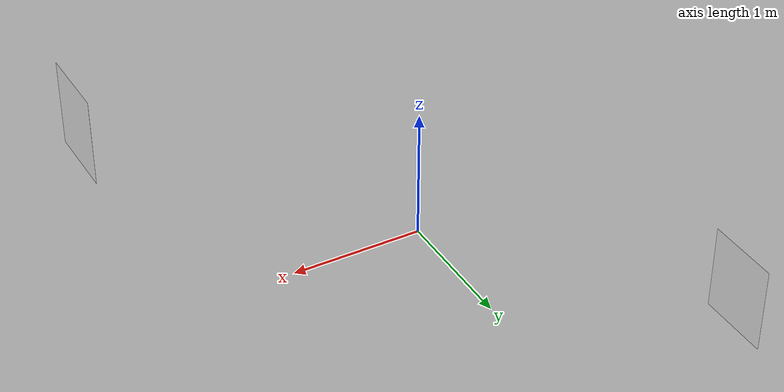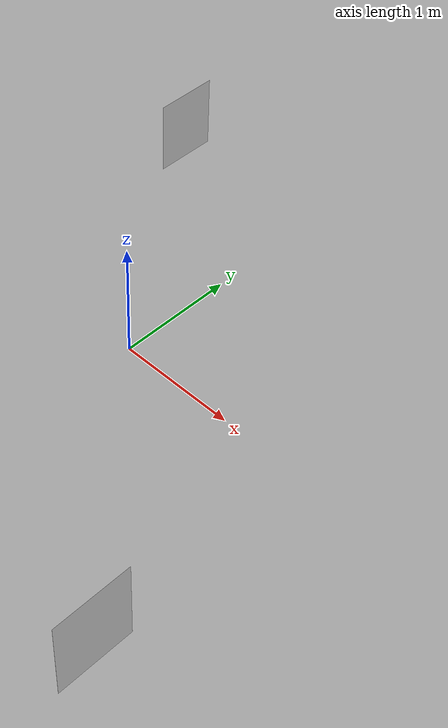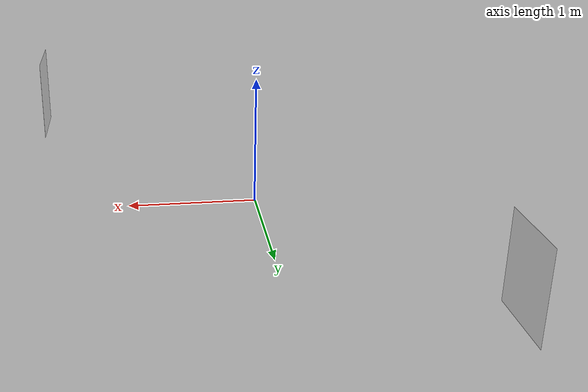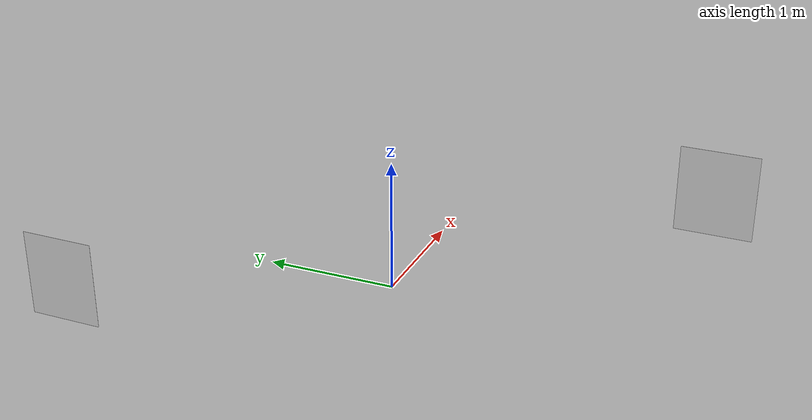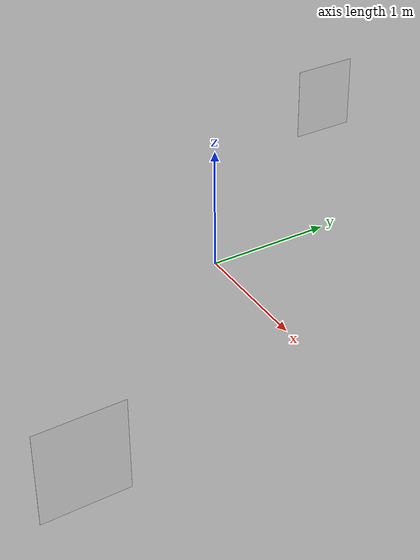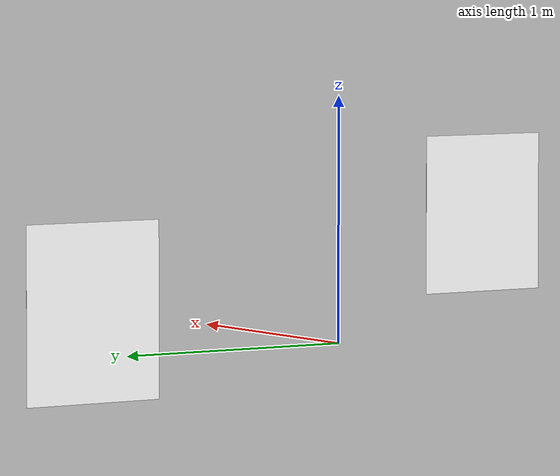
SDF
<?xml version="1.0"?>
<sdf version="1.6">
  <model name="pharmacy_board1_dynamic_20260603_154217">
    <static>true</static>
    <link name="board1_texture_link">
      <visual name="board1_texture_visual">
        <pose>1.800 -2.00 0.35 0 -1.5708 0</pose>
        <geometry>
          <plane>
            <normal>0 0 1</normal>
            <size>0.72 0.63</size>
          </plane>
        </geometry>
        <material>
          <ambient>1 1 1 1</ambient>
          <diffuse>1 1 1 1</diffuse>
          <pbr>
            <metal>
              <albedo_map>model://pharmacy_board1_dynamic/materials/textures/board1_dynamic_20260603_154217.png</albedo_map>
              <metalness>0</metalness>
              <roughness>1</roughness>
            </metal>
          </pbr>
        </material>
      </visual>
    </link>
    <link name="board2_texture_link">
      <visual name="board2_texture_visual">
        <pose>-1.34 1.95 0.32 0 1.5708 0</pose>
        <geometry>
          <plane>
            <normal>0 0 1</normal>
            <size>0.650 0.550</size>
          </plane>
        </geometry>
        <material>
          <ambient>1 1 1 1</ambient>
          <diffuse>1 1 1 1</diffuse>
          <pbr>
            <metal>
              <albedo_map>model://pharmacy_board1_dynamic/materials/textures/board2_dynamic_free_20260603_154217.png</albedo_map>
              <metalness>0</metalness>
              <roughness>1</roughness>
            </metal>
          </pbr>
        </material>
      </visual>
    </link>
  </model>
</sdf>
